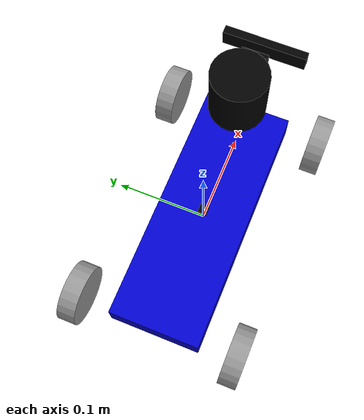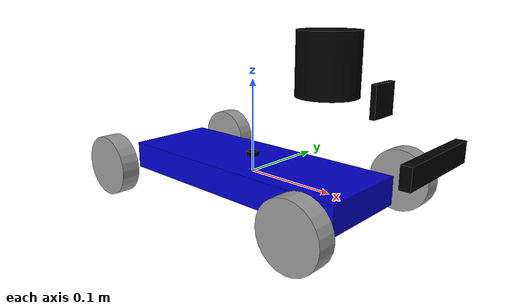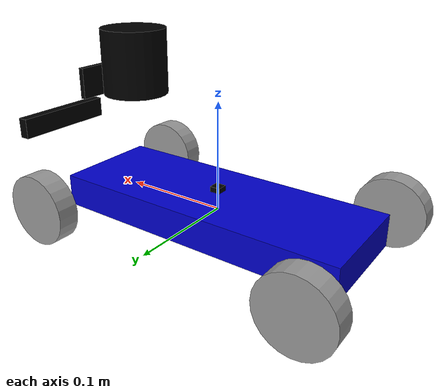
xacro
<?xml version="1.0"?>

<robot name="mecanum_car" xmlns:xacro="http://www.ros.org/wiki/xacro">
    <!-- Included URDF Files -->
    <xacro:include filename="$(find racebot_description)/urdf/mecanum/mecanum_base.xacro" />

    <xacro:mecanum_base/>

    <xacro:include filename="$(find racebot_description)/urdf/mecanum/base_drive.gazebo" />

    <xacro:base_mecanum_gazebo/>
</robot>

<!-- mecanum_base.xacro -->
<robot name="mecanum_base" xmlns:xacro="http://www.ros.org/wiki/xacro">

    <material name="blue">
        <color rgba="0 0 0.8 1"/>
    </material>
    <material name="black">
        <color rgba="0 0 0 1"/>
    </material>
    <material name="white">
        <color rgba="1 1 1 1"/>
    </material>
    <material name="red">
        <color rgba="0.8 0.0 0.0 1.0"/>
    </material>

    <xacro:macro name="default_inertial" params="mass">
        <inertial>
            <mass value="${mass}"/>
            <inertia ixx="1.0" ixy="0.0" ixz="0.0" iyy="1.0" iyz="0.0" izz="1.0"/>
        </inertial>
    </xacro:macro>

    <xacro:macro name="mecanum_base">
        <link name="base_footprint"/>
        <link name="base_link">
            <inertial>
                <mass value="10.69655"/>
                <origin rpy="0 0 0 " xyz="0 0 0"/>
                <inertia ixx="1.387114121" ixy="0" ixz="0" iyy="1.566123162" iyz="0" izz="0.343148801"/>
            </inertial>

            <collision>
                <origin rpy="0 0 0" xyz="0 0 0"/>
                <geometry>
                    <box size="0.28 0.1 0.03"/>
                </geometry>
            </collision>

            <visual>
                <origin rpy="0 0 0" xyz="0 0 0"/>
                <geometry>
                    <box size="0.28 0.1 0.03"/>
                </geometry>
                <material name="base_link">
                    <color rgba="0.0 0.0 0.8 1" />
                </material>
            </visual>
        </link>

        <joint name="base_joint" type="fixed">
            <origin xyz="0 0 -0.0288" rpy="0 0 0" />
            <parent link="base_link"/>
            <child link="base_footprint" />
        </joint>

        <joint name="join_left_front" type="fixed">
            <parent link="base_link"/>
            <child link="link_left_front"/>

            <origin xyz="0.13 0.09 0" />
            <axis xyz="0 1 0" />
            <limit effort="10" velocity="1000" />
        </joint>

        <link name="link_left_front">
            <pose>0 0 0 0 0 0</pose>
            <inertial>
                <mass value="0.59"/>
                <origin xyz="0 0 -0.07625" rpy="0 0 -1.57"/>
                <inertia ixx="0.002525266" ixy="0" ixz="0" iyy="0.001311197" iyz="0" izz="0.001311136"/>
            </inertial>

            <collision>
                <origin xyz="0 0 0" rpy="1.57 0 0" />
                <geometry>
                    <cylinder radius="0.033" length="0.02" />
                </geometry>
            </collision>

            <visual>
                <origin xyz="0 0 0" rpy="1.57 0 0" />
                <geometry>
                    <cylinder radius="0.033" length="0.02" />
                </geometry>
                <material name="wheels">
                    <color rgba="0.6 0.6 0.6 1" />
                </material>
            </visual>
        </link>

        <joint name="join_right_front" type="fixed">
            <parent link="base_link"/>
            <child link="link_right_front"/>
            <origin xyz="0.13 -0.09 0" />
            <axis xyz="0 1 0" />
            <limit effort="10" velocity="1000" />
        </joint>

        <link name="link_right_front">
            <pose>0 0 0 0 0 0</pose>
            <inertial>
                <mass value="0.59"/>
                <origin xyz="0 0 -0.07625" rpy="0 0 -1.57"/>
                <inertia ixx="0.002525266" ixy="0" ixz="0" iyy="0.001311197" iyz="0" izz="0.001311136"/>
            </inertial>

            <collision>
                <origin xyz="0 0 0" rpy="1.57 0 0" />
                <geometry>
                    <cylinder radius="0.033" length="0.02" />
                </geometry>
            </collision>

            <visual>
                <origin xyz="0 0 0" rpy="1.57 0 0" />
                <geometry>
                    <cylinder radius="0.033" length="0.02" />
                </geometry>
                <material name="wheels">
                    <color rgba="0.6 0.6 0.6 1" />
                </material>
            </visual>
        </link>

        <joint name="join_left_back" type="fixed">
            <parent link="base_link"/>
            <child link="link_left_back"/>

            <origin xyz="-0.13 0.09 0" />
            <axis xyz="0 1 0" />
            <limit effort="10" velocity="1000" />
        </joint>

        <link name="link_left_back">
            <pose>0 0 0 0 0 0</pose>

            <inertial>
                <mass value="0.59"/>
                <origin xyz="0 0 -0.07625" rpy="0 0 -1.57"/>
                <inertia ixx="0.002525266" ixy="0" ixz="0" iyy="0.001311197" iyz="0" izz="0.001311136"/>
            </inertial>

            <collision>
                <origin xyz="0 0 0" rpy="1.57 0 0" />
                <geometry>
                    <cylinder radius="0.033" length="0.02" />
                </geometry>
            </collision>

            <visual>
                <origin xyz="0 0 0" rpy="1.57 0 0" />
                <geometry>
                    <cylinder radius="0.033" length="0.02" />
                </geometry>
                <material name="wheels">
                    <color rgba="0.6 0.6 0.6 1" />
                </material>
            </visual>
        </link>

        <joint name="join_right_back" type="fixed">
            <parent link="base_link"/>
            <child link="link_right_back"/>

            <origin xyz="-0.13 -0.09 0" />
            <axis xyz="0 1 0" />
            <limit effort="10" velocity="1000" />
        </joint>

        <link name="link_right_back">
            <pose>0 0 0 0 0 0</pose>

            <inertial>
                <mass value="0.59"/>
                <origin xyz="0 0 -0.07625" rpy="0 0 -1.57"/>
                <inertia ixx="0.002525266" ixy="0" ixz="0" iyy="0.001311197" iyz="0" izz="0.001311136"/>
            </inertial>

            <collision>
                <origin xyz="0 0 0" rpy="1.57 0 0" />
                <geometry>
                    <cylinder radius="0.033" length="0.02" />
                </geometry>
            </collision>

            <visual>
                <origin xyz="0 0 0" rpy="1.57 0 0" />
                <geometry>
                    <cylinder radius="0.033" length="0.02" />
                </geometry>
                <material name="wheels">
                    <color rgba="0.6 0.6 0.6 1" />
                </material>
            </visual>
        </link>

    <link name="lidar">
        <visual>
            <geometry>
                <cylinder radius="0.03" length="0.06" />
            </geometry>
            <origin xyz="0 0 0" rpy="0 0 0" />
            <material name="black">
                <color rgba="0.0 0.0 0.0 1.0" />
            </material>
        </visual>
        <collision>
            <geometry>
                <cylinder radius="0.03" length="0.06" />
            </geometry>
            <origin xyz="0.0 0.0 0.0" rpy="0.0 0.0 0.0" />
        </collision>
        <inertial>
            <origin xyz="0 0 0" />
            <mass value="0.1" />
            <inertia ixx="6.64E-04" ixy="0" ixz="0" iyy="6.64E-04" iyz="0" izz="1.02E-03" />
        </inertial>
    </link>

    <joint name="lidar_joint" type="fixed">
        <parent link="base_link" />
        <child link="lidar" />
        <origin xyz="0.093603 0 0.12377" />
        <axis xyz="0 0 1" />
    </joint>

    <link name="camera">
        <visual>
            <geometry>
                <box size="0.005 0.03 0.03"/>
            </geometry>
            <origin xyz="0 0 0" rpy="0 0 0" />
            <material name="black">
                <color rgba="0.0 0.0 0.0 1.0" />
            </material>
        </visual>
        <collision>
            <geometry>
                <box size="0.005 0.03 0.03"/>
            </geometry>
            <origin xyz="0.0 0.0 0.0" rpy="0.0 0.0 0.0" />
        </collision>
        <inertial>
            <origin xyz="0 0 0" />
            <mass value="0.05" />
            <inertia ixx="6.64E-04" ixy="0" ixz="0" iyy="6.64E-04" iyz="0" izz="1.02E-03" />
        </inertial>
    </link>

    <joint name="camera_joint" type="fixed">
        <parent link="base_link" />
        <child link="camera" />
        <origin xyz="0.14851 0.0022137 0.0975" />
        <axis xyz="0 0 1" />
    </joint>

    <link name="real_sense">
        <visual>
            <geometry>
                <box size="0.01 0.1 0.02"/>
            </geometry>
            <origin xyz="0 0 0" rpy="0 0 0" />
            <material name="black">
                <color rgba="0.0 0.0 0.0 1.0" />
            </material>
        </visual>
        <collision>
            <geometry>
                <box size="0.01 0.1 0.02"/>
            </geometry>
            <origin xyz="0.0 0.0 0.0" rpy="0.0 0.0 0.0" />
        </collision>
        <inertial>
            <origin xyz="0 0 0" />
            <mass value="0.05" />
            <inertia ixx="6.64E-04" ixy="0" ixz="0" iyy="6.64E-04" iyz="0" izz="1.02E-03" />
        </inertial>
    </link>

    <joint name="realsense_joint" type="fixed">
        <parent link="base_link" />
        <child link="real_sense" />
        <origin xyz="0.19864 0.0038046 0.052021" />
        <axis xyz="0 0 1" />
    </joint>

    <link name="realsense_depth"/>
    <joint name="realsense_depth_joint" type="fixed">
            <origin xyz="0 0 0" rpy="-1.5708 0 -1.5708"/>
            <parent link="real_sense"/>
            <child link="realsense_depth"/>
    </joint>

    <link name="imu">
        <visual>
            <geometry>
                <box size="0.01 0.01 0.005"/>
            </geometry>
            <origin xyz="0 0 0" rpy="0 0 0" />
            <material name="black">
                <color rgba="0.0 0.0 0.0 1.0" />
            </material>
        </visual>
        <collision>
            <geometry>
                <box size="0.01 0.01 0.005"/>
            </geometry>
            <origin xyz="0.0 0.0 0.0" rpy="0.0 0.0 0.0" />
        </collision>
        <inertial>
            <origin xyz="0 0 0" />
            <mass value="0.05" />
            <inertia ixx="6.64E-04" ixy="0" ixz="0" iyy="6.64E-04" iyz="0" izz="1.02E-03" />
        </inertial>
    </link>

    <joint name="imu_joint" type="fixed">
        <parent link="base_link" />
        <child link="imu" />
        <origin xyz="0 0 0.02" />
        <axis xyz="0 0 1" />
    </joint>

    </xacro:macro>
</robot>
